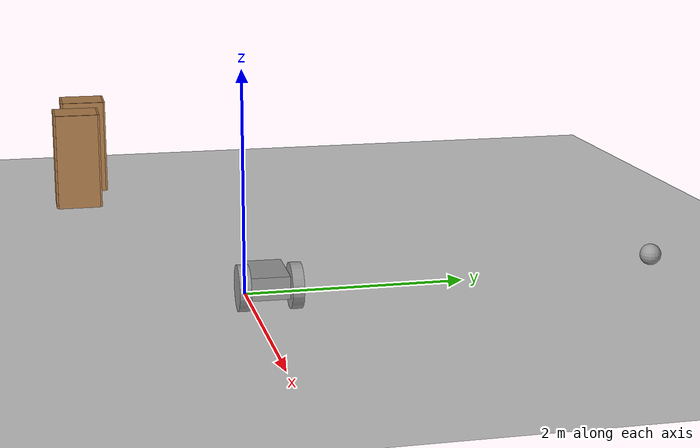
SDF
<sdf version="1.6">
 <world name="default">
  <model name="ground_plane">
   <static>1</static>
   <link name="link">
    <collision name="collision">
     <geometry><plane><normal>0 0 1</normal><size>100 100</size></plane></geometry>
     <surface>
      <contact><collide_bitmask>65535</collide_bitmask></contact>
      <friction><ode><mu>100</mu><mu2>50</mu2></ode></friction>
     </surface>
    </collision>
    <visual name="visual">
     <cast_shadows>0</cast_shadows>
     <geometry><plane><normal>0 0 1</normal><size>100 100</size></plane></geometry>
     <material>
      <script><uri>file://media/materials/scripts/gazebo.material</uri><name>Gazebo/Grey</name></script>
     </material>
    </visual>
   </link>
  </model>
  <model name="project_1_model">
   <link name="link_0">
    <inertial>
     <mass>1</mass>
     <inertia>
      <ixx>0.166667</ixx>
      <ixy>0</ixy>
      <ixz>0</ixz>
      <iyy>0.166667</iyy>
      <iyz>0</iyz>
      <izz>0.166667</izz>
     </inertia>
    </inertial>
    <pose>-0.03625 0.03125 0.025 0 -0 0</pose>
    <visual name="visual">
     <geometry><box><size>0.55 0.35 0.2</size></box></geometry>
     <material>
      <lighting>1</lighting>
      <script><uri>file://media/materials/scripts/gazebo.material</uri><name>Gazebo/Grey</name></script>
      <shader type="vertex"><normal_map>__default__</normal_map></shader>
      <ambient>0.3 0.3 0.3 1</ambient>
      <diffuse>0.7 0.7 0.7 1</diffuse>
      <specular>0.01 0.01 0.01 1</specular>
      <emissive>0 0 0 1</emissive>
     </material>
    </visual>
    <collision name="collision">
     <pose>-0.01 0 0 0 -0 0</pose>
     <geometry><box><size>0.55 0.35 0.2</size></box></geometry>
     <surface>
      <friction>
       <ode><mu>1</mu><mu2>1</mu2><fdir1>0 0 0</fdir1><slip1>0</slip1><slip2>0</slip2></ode>
       <torsional>
        <coefficient>1</coefficient>
        <patch_radius>0</patch_radius>
        <surface_radius>0</surface_radius>
        <use_patch_radius>1</use_patch_radius>
        <ode><slip>0</slip></ode>
       </torsional>
      </friction>
      <bounce><restitution_coefficient>0</restitution_coefficient><threshold>1e+06</threshold></bounce>
      <contact>
       <collide_without_contact>0</collide_without_contact>
       <collide_without_contact_bitmask>1</collide_without_contact_bitmask>
       <collide_bitmask>1</collide_bitmask>
       <ode>
        <soft_cfm>0</soft_cfm>
        <soft_erp>0.2</soft_erp>
        <kp>1e+13</kp>
        <kd>1</kd>
        <max_vel>0.01</max_vel>
        <min_depth>0</min_depth>
       </ode>
       <bullet>
        <split_impulse>1</split_impulse>
        <split_impulse_penetration_threshold>-0.01</split_impulse_penetration_threshold>
        <soft_cfm>0</soft_cfm>
        <soft_erp>0.2</soft_erp>
        <kp>1e+13</kp>
        <kd>1</kd>
       </bullet>
      </contact>
     </surface>
    </collision>
   </link>
   <link name="link_1">
    <inertial>
     <mass>1</mass>
     <inertia><ixx>0.145833</ixx><ixy>0</ixy><ixz>0</ixz><iyy>0.145833</iyy><iyz>0</iyz><izz>0.125</izz></inertia>
    </inertial>
    <pose>0.16375 0.256269 -0.175 0 -0 0</pose>
    <visual name="visual">
     <pose>0 0 0.2 1.5707 -0 0</pose>
     <geometry><cylinder><radius>0.2</radius><length>0.1</length></cylinder></geometry>
     <material>
      <lighting>1</lighting>
      <script><uri>file://media/materials/scripts/gazebo.material</uri><name>Gazebo/Grey</name></script>
      <shader type="vertex"><normal_map>__default__</normal_map></shader>
      <ambient>0.3 0.3 0.3 1</ambient>
      <diffuse>0.7 0.7 0.7 1</diffuse>
      <specular>0.01 0.01 0.01 1</specular>
      <emissive>0 0 0 1</emissive>
     </material>
    </visual>
    <collision name="collision">
     <pose>0 0 0.2 1.5707 -0 0</pose>
     <geometry><cylinder><radius>0.2</radius><length>0.1</length></cylinder></geometry>
     <surface>
      <friction>
       <ode><mu>1</mu><mu2>1</mu2><fdir1>0 0 0</fdir1><slip1>0</slip1><slip2>0</slip2></ode>
       <torsional>
        <coefficient>1</coefficient>
        <patch_radius>0</patch_radius>
        <surface_radius>0</surface_radius>
        <use_patch_radius>1</use_patch_radius>
        <ode><slip>0</slip></ode>
       </torsional>
      </friction>
      <bounce><restitution_coefficient>0</restitution_coefficient><threshold>1e+06</threshold></bounce>
      <contact>
       <collide_without_contact>0</collide_without_contact>
       <collide_without_contact_bitmask>1</collide_without_contact_bitmask>
       <collide_bitmask>1</collide_bitmask>
       <ode>
        <soft_cfm>0</soft_cfm>
        <soft_erp>0.2</soft_erp>
        <kp>1e+13</kp>
        <kd>1</kd>
        <max_vel>0.01</max_vel>
        <min_depth>0</min_depth>
       </ode>
       <bullet>
        <split_impulse>1</split_impulse>
        <split_impulse_penetration_threshold>-0.01</split_impulse_penetration_threshold>
        <soft_cfm>0</soft_cfm>
        <soft_erp>0.2</soft_erp>
        <kp>1e+13</kp>
        <kd>1</kd>
       </bullet>
      </contact>
     </surface>
    </collision>
   </link>
   <link name="link_1_clone">
    <inertial>
     <mass>1</mass>
     <inertia><ixx>0.145833</ixx><ixy>0</ixy><ixz>0</ixz><iyy>0.145833</iyy><iyz>0</iyz><izz>0.125</izz></inertia>
    </inertial>
    <pose>0.16375 -0.193769 -0.175 0 -0 0</pose>
    <visual name="visual">
     <pose>0 0 0.2 1.5707 -0 0</pose>
     <geometry><cylinder><radius>0.2</radius><length>0.1</length></cylinder></geometry>
     <material>
      <lighting>1</lighting>
      <script><uri>file://media/materials/scripts/gazebo.material</uri><name>Gazebo/Grey</name></script>
      <shader type="vertex"><normal_map>__default__</normal_map></shader>
      <ambient>0.3 0.3 0.3 1</ambient>
      <diffuse>0.7 0.7 0.7 1</diffuse>
      <specular>0.01 0.01 0.01 1</specular>
      <emissive>0 0 0 1</emissive>
     </material>
    </visual>
    <collision name="collision">
     <pose>0 0 0.2 1.5707 -0 0</pose>
     <geometry><cylinder><radius>0.2</radius><length>0.1</length></cylinder></geometry>
     <surface>
      <friction>
       <ode><mu>1</mu><mu2>1</mu2><fdir1>0 0 0</fdir1><slip1>0</slip1><slip2>0</slip2></ode>
       <torsional>
        <coefficient>1</coefficient>
        <patch_radius>0</patch_radius>
        <surface_radius>0</surface_radius>
        <use_patch_radius>1</use_patch_radius>
        <ode><slip>0</slip></ode>
       </torsional>
      </friction>
      <bounce><restitution_coefficient>0</restitution_coefficient><threshold>1e+06</threshold></bounce>
      <contact>
       <collide_without_contact>0</collide_without_contact>
       <collide_without_contact_bitmask>1</collide_without_contact_bitmask>
       <collide_bitmask>1</collide_bitmask>
       <ode>
        <soft_cfm>0</soft_cfm>
        <soft_erp>0.2</soft_erp>
        <kp>1e+13</kp>
        <kd>1</kd>
        <max_vel>0.01</max_vel>
        <min_depth>0</min_depth>
       </ode>
       <bullet>
        <split_impulse>1</split_impulse>
        <split_impulse_penetration_threshold>-0.01</split_impulse_penetration_threshold>
        <soft_cfm>0</soft_cfm>
        <soft_erp>0.2</soft_erp>
        <kp>1e+13</kp>
        <kd>1</kd>
       </bullet>
      </contact>
     </surface>
    </collision>
   </link>
   <link name="link_2">
    <inertial>
     <mass>1</mass>
     <inertia><ixx>0.1</ixx><ixy>0</ixy><ixz>0</ixz><iyy>0.1</iyy><iyz>0</iyz><izz>0.1</izz></inertia>
    </inertial>
    <pose>-0.23625 0.03125 -0.125 0 -0 0</pose>
    <visual name="visual">
     <geometry><sphere><radius>0.05</radius></sphere></geometry>
     <material>
      <lighting>1</lighting>
      <script><uri>file://media/materials/scripts/gazebo.material</uri><name>Gazebo/Grey</name></script>
      <shader type="vertex"><normal_map>__default__</normal_map></shader>
      <ambient>0.3 0.3 0.3 1</ambient>
      <diffuse>0.7 0.7 0.7 1</diffuse>
      <specular>0.01 0.01 0.01 1</specular>
      <emissive>0 0 0 1</emissive>
     </material>
    </visual>
    <collision name="collision">
     <geometry><sphere><radius>0.05</radius></sphere></geometry>
     <surface>
      <friction>
       <ode><mu>1</mu><mu2>1</mu2><fdir1>0 0 0</fdir1><slip1>0</slip1><slip2>0</slip2></ode>
       <torsional>
        <coefficient>1</coefficient>
        <patch_radius>0</patch_radius>
        <surface_radius>0</surface_radius>
        <use_patch_radius>1</use_patch_radius>
        <ode><slip>0</slip></ode>
       </torsional>
      </friction>
      <bounce><restitution_coefficient>0</restitution_coefficient><threshold>1e+06</threshold></bounce>
      <contact>
       <collide_without_contact>0</collide_without_contact>
       <collide_without_contact_bitmask>1</collide_without_contact_bitmask>
       <collide_bitmask>1</collide_bitmask>
       <ode>
        <soft_cfm>0</soft_cfm>
        <soft_erp>0.2</soft_erp>
        <kp>1e+13</kp>
        <kd>1</kd>
        <max_vel>0.01</max_vel>
        <min_depth>0</min_depth>
       </ode>
       <bullet>
        <split_impulse>1</split_impulse>
        <split_impulse_penetration_threshold>-0.01</split_impulse_penetration_threshold>
        <soft_cfm>0</soft_cfm>
        <soft_erp>0.2</soft_erp>
        <kp>1e+13</kp>
        <kd>1</kd>
       </bullet>
      </contact>
     </surface>
    </collision>
   </link>
   <joint name="link_0_JOINT_0" type="revolute">
    <parent>link_0</parent>
    <child>link_1</child>
    <pose>0 0 0 0 -0.01 0</pose>
    <axis>
     <xyz>1 0 0</xyz>
     <use_parent_model_frame>0</use_parent_model_frame>
     <limit>
      <lower>-1.79769e+308</lower>
      <upper>1.79769e+308</upper>
      <effort>-1</effort>
      <velocity>-1</velocity>
     </limit>
     <dynamics>
      <spring_reference>0</spring_reference>
      <spring_stiffness>0</spring_stiffness>
      <damping>0</damping>
     </dynamics>
    </axis>
    <physics>
     <ode><limit><cfm>0</cfm><erp>0.2</erp></limit><suspension><cfm>0</cfm><erp>0.2</erp></suspension></ode>
    </physics>
   </joint>
   <joint name="link_0_JOINT_1" type="revolute">
    <parent>link_0</parent>
    <child>link_1_clone</child>
    <axis>
     <xyz>1 0 0</xyz>
     <use_parent_model_frame>0</use_parent_model_frame>
     <limit>
      <lower>-1.79769e+308</lower>
      <upper>1.79769e+308</upper>
      <effort>-1</effort>
      <velocity>-1</velocity>
     </limit>
     <dynamics>
      <spring_reference>0</spring_reference>
      <spring_stiffness>0</spring_stiffness>
      <damping>0</damping>
     </dynamics>
    </axis>
    <physics>
     <ode><limit><cfm>0</cfm><erp>0.2</erp></limit><suspension><cfm>0</cfm><erp>0.2</erp></suspension></ode>
    </physics>
   </joint>
   <joint name="link_0_JOINT_5" type="ball">
    <parent>link_0</parent>
    <child>link_2</child>
    <physics>
     <ode><limit><cfm>0</cfm><erp>0.2</erp></limit><suspension><cfm>0</cfm><erp>0.2</erp></suspension></ode>
    </physics>
   </joint>
   <static>0</static>
   <pose>0.300774 0.110573 0.174999 4e-06 3e-06 -0.02402</pose>
  </model>
  <model name="cabinet">
   <static>1</static>
   <link name="cabinet_bottom_plate">
    <inertial>
     <pose>0 0 -1 0 -0 0</pose>
     <inertia><ixx>2.05</ixx><ixy>0</ixy><ixz>0</ixz><iyy>2.05</iyy><iyz>0</iyz><izz>2.05</izz></inertia>
     <mass>25</mass>
    </inertial>
    <collision name="cabinet_bottom_plate_geom">
     <pose>0 0 0.01 0 -0 0</pose>
     <geometry><box><size>0.45 0.45 0.02</size></box></geometry>
    </collision>
    <visual name="cabinet_bottom_plate_geom_visual">
     <pose>0 0 0.01 0 -0 0</pose>
     <geometry><box><size>0.45 0.45 0.02</size></box></geometry>
     <material>
      <script><uri>file://media/materials/scripts/gazebo.material</uri><name>Gazebo/Wood</name></script>
     </material>
    </visual>
    <collision name="cabinet_bottom_plate_geom_cabinet_back_plate">
     <pose>0.235 0 0.51 0 -0 0</pose>
     <geometry><box><size>0.02 0.45 1.02</size></box></geometry>
    </collision>
    <visual name="cabinet_bottom_plate_geom_cabinet_back_plate_visual">
     <pose>0.235 0 0.51 0 -0 0</pose>
     <geometry><box><size>0.02 0.45 1.02</size></box></geometry>
     <material>
      <script><uri>file://media/materials/scripts/gazebo.material</uri><name>Gazebo/Wood</name></script>
     </material>
    </visual>
    <collision name="cabinet_bottom_plate_geom_cabinet_left_plate">
     <pose>0 0.235 0.51 0 -0 0</pose>
     <geometry><box><size>0.45 0.02 1.02</size></box></geometry>
    </collision>
    <visual name="cabinet_bottom_plate_geom_cabinet_left_plate_visual">
     <pose>0 0.235 0.51 0 -0 0</pose>
     <geometry><box><size>0.45 0.02 1.02</size></box></geometry>
     <material>
      <script><uri>file://media/materials/scripts/gazebo.material</uri><name>Gazebo/Wood</name></script>
     </material>
    </visual>
    <collision name="cabinet_bottom_plate_geom_cabinet_middle_plate">
     <pose>0 0 0.51 0 -0 0</pose>
     <geometry><box><size>0.45 0.45 0.02</size></box></geometry>
    </collision>
    <visual name="cabinet_bottom_plate_geom_cabinet_middle_plate_visual">
     <pose>0 0 0.51 0 -0 0</pose>
     <geometry><box><size>0.45 0.45 0.02</size></box></geometry>
     <material>
      <script><uri>file://media/materials/scripts/gazebo.material</uri><name>Gazebo/Wood</name></script>
     </material>
    </visual>
    <collision name="cabinet_bottom_plate_geom_cabinet_right_plate">
     <pose>0 -0.235 0.51 0 -0 0</pose>
     <geometry><box><size>0.45 0.02 1.02</size></box></geometry>
    </collision>
    <visual name="cabinet_bottom_plate_geom_cabinet_right_plate_visual">
     <pose>0 -0.235 0.51 0 -0 0</pose>
     <geometry><box><size>0.45 0.02 1.02</size></box></geometry>
     <material>
      <script><uri>file://media/materials/scripts/gazebo.material</uri><name>Gazebo/Wood</name></script>
     </material>
    </visual>
    <collision name="cabinet_bottom_plate_geom_cabinet_top_plate">
     <pose>0 0 1.01 0 -0 0</pose>
     <geometry><box><size>0.45 0.45 0.02</size></box></geometry>
    </collision>
    <visual name="cabinet_bottom_plate_geom_cabinet_top_plate_visual">
     <pose>0 0 1.01 0 -0 0</pose>
     <geometry><box><size>0.45 0.45 0.02</size></box></geometry>
     <material>
      <script><uri>file://media/materials/scripts/gazebo.material</uri><name>Gazebo/Wood</name></script>
     </material>
    </visual>
   </link>
   <pose>-3.72545 -1.26286 0 0 -0 0</pose>
  </model>
  <model name="cabinet_0">
   <static>1</static>
   <link name="cabinet_bottom_plate">
    <inertial>
     <pose>0 0 -1 0 -0 0</pose>
     <inertia><ixx>2.05</ixx><ixy>0</ixy><ixz>0</ixz><iyy>2.05</iyy><iyz>0</iyz><izz>2.05</izz></inertia>
     <mass>25</mass>
    </inertial>
    <collision name="cabinet_bottom_plate_geom">
     <pose>0 0 0.01 0 -0 0</pose>
     <geometry><box><size>0.45 0.45 0.02</size></box></geometry>
    </collision>
    <visual name="cabinet_bottom_plate_geom_visual">
     <pose>0 0 0.01 0 -0 0</pose>
     <geometry><box><size>0.45 0.45 0.02</size></box></geometry>
     <material>
      <script><uri>file://media/materials/scripts/gazebo.material</uri><name>Gazebo/Wood</name></script>
     </material>
    </visual>
    <collision name="cabinet_bottom_plate_geom_cabinet_back_plate">
     <pose>0.235 0 0.51 0 -0 0</pose>
     <geometry><box><size>0.02 0.45 1.02</size></box></geometry>
    </collision>
    <visual name="cabinet_bottom_plate_geom_cabinet_back_plate_visual">
     <pose>0.235 0 0.51 0 -0 0</pose>
     <geometry><box><size>0.02 0.45 1.02</size></box></geometry>
     <material>
      <script><uri>file://media/materials/scripts/gazebo.material</uri><name>Gazebo/Wood</name></script>
     </material>
    </visual>
    <collision name="cabinet_bottom_plate_geom_cabinet_left_plate">
     <pose>0 0.235 0.51 0 -0 0</pose>
     <geometry><box><size>0.45 0.02 1.02</size></box></geometry>
    </collision>
    <visual name="cabinet_bottom_plate_geom_cabinet_left_plate_visual">
     <pose>0 0.235 0.51 0 -0 0</pose>
     <geometry><box><size>0.45 0.02 1.02</size></box></geometry>
     <material>
      <script><uri>file://media/materials/scripts/gazebo.material</uri><name>Gazebo/Wood</name></script>
     </material>
    </visual>
    <collision name="cabinet_bottom_plate_geom_cabinet_middle_plate">
     <pose>0 0 0.51 0 -0 0</pose>
     <geometry><box><size>0.45 0.45 0.02</size></box></geometry>
    </collision>
    <visual name="cabinet_bottom_plate_geom_cabinet_middle_plate_visual">
     <pose>0 0 0.51 0 -0 0</pose>
     <geometry><box><size>0.45 0.45 0.02</size></box></geometry>
     <material>
      <script><uri>file://media/materials/scripts/gazebo.material</uri><name>Gazebo/Wood</name></script>
     </material>
    </visual>
    <collision name="cabinet_bottom_plate_geom_cabinet_right_plate">
     <pose>0 -0.235 0.51 0 -0 0</pose>
     <geometry><box><size>0.45 0.02 1.02</size></box></geometry>
    </collision>
    <visual name="cabinet_bottom_plate_geom_cabinet_right_plate_visual">
     <pose>0 -0.235 0.51 0 -0 0</pose>
     <geometry><box><size>0.45 0.02 1.02</size></box></geometry>
     <material>
      <script><uri>file://media/materials/scripts/gazebo.material</uri><name>Gazebo/Wood</name></script>
     </material>
    </visual>
    <collision name="cabinet_bottom_plate_geom_cabinet_top_plate">
     <pose>0 0 1.01 0 -0 0</pose>
     <geometry><box><size>0.45 0.45 0.02</size></box></geometry>
    </collision>
    <visual name="cabinet_bottom_plate_geom_cabinet_top_plate_visual">
     <pose>0 0 1.01 0 -0 0</pose>
     <geometry><box><size>0.45 0.45 0.02</size></box></geometry>
     <material>
      <script><uri>file://media/materials/scripts/gazebo.material</uri><name>Gazebo/Wood</name></script>
     </material>
    </visual>
   </link>
   <pose>-4.50893 -1.15399 0 0 -0 0</pose>
  </model>
  <model name="white_ball">
   <link name="link_0">
    <inertial>
     <mass>1</mass>
     <inertia><ixx>0.1</ixx><ixy>0</ixy><ixz>0</ixz><iyy>0.1</iyy><iyz>0</iyz><izz>0.1</izz></inertia>
    </inertial>
    <visual name="visual">
     <geometry><sphere><radius>0.1</radius></sphere></geometry>
     <material>
      <lighting>1</lighting>
      <script><uri>file://media/materials/scripts/gazebo.material</uri><name>Gazebo/Grey</name></script>
      <shader type="vertex"><normal_map>__default__</normal_map></shader>
      <ambient>1 1 1 1</ambient>
      <diffuse>1 1 1 1</diffuse>
      <specular>1 1 1 1</specular>
      <emissive>1 1 1 1</emissive>
     </material>
    </visual>
    <collision name="collision">
     <geometry><sphere><radius>0.1</radius></sphere></geometry>
     <surface>
      <friction>
       <ode><mu>1</mu><mu2>1</mu2><fdir1>0 0 0</fdir1><slip1>0</slip1><slip2>0</slip2></ode>
       <torsional>
        <coefficient>1</coefficient>
        <patch_radius>0</patch_radius>
        <surface_radius>0</surface_radius>
        <use_patch_radius>1</use_patch_radius>
        <ode><slip>0</slip></ode>
       </torsional>
      </friction>
      <bounce><restitution_coefficient>0</restitution_coefficient><threshold>1e+06</threshold></bounce>
      <contact>
       <collide_without_contact>0</collide_without_contact>
       <collide_without_contact_bitmask>1</collide_without_contact_bitmask>
       <collide_bitmask>1</collide_bitmask>
       <ode>
        <soft_cfm>0</soft_cfm>
        <soft_erp>0.2</soft_erp>
        <kp>1e+13</kp>
        <kd>1</kd>
        <max_vel>0.01</max_vel>
        <min_depth>0</min_depth>
       </ode>
       <bullet>
        <split_impulse>1</split_impulse>
        <split_impulse_penetration_threshold>-0.01</split_impulse_penetration_threshold>
        <soft_cfm>0</soft_cfm>
        <soft_erp>0.2</soft_erp>
        <kp>1e+13</kp>
        <kd>1</kd>
       </bullet>
      </contact>
     </surface>
    </collision>
   </link>
   <static>0</static>
   <pose>-0.112931 3.88618 0.1 0 -0 0</pose>
  </model>
 </world>
</sdf>
